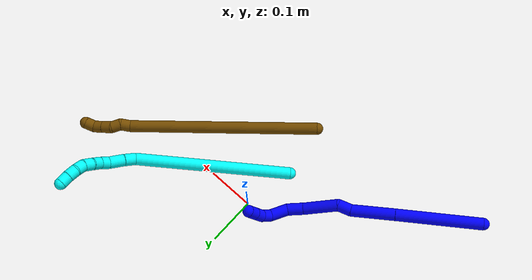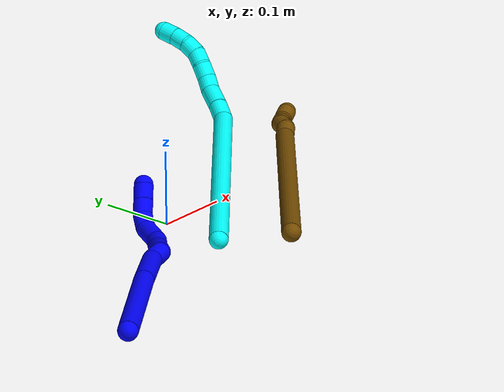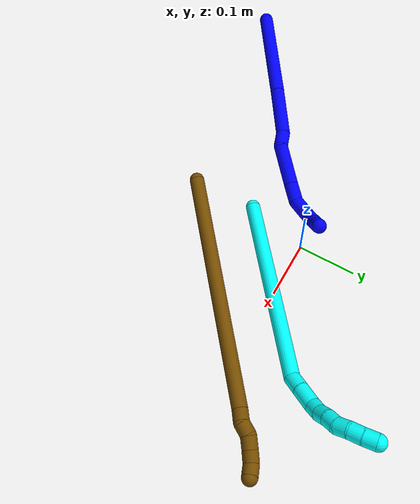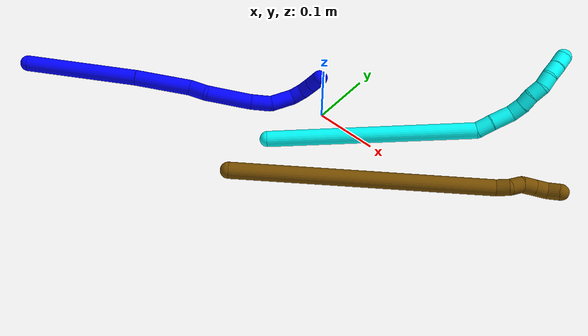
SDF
<sdf version="1.7">
 <world name="default">
  <model name="1">
   <static>0</static>
   <link name="1">
    <collision name="collision-cylinder-e_1_1_4">
     <pose>0.034532 0.018659 -0.078277 -2.90759 0.40536 -2.1025</pose>
     <geometry><cylinder><radius>0.0125</radius><length>0.175132</length></cylinder></geometry>
     <surface>
      <friction><ode><mu>1.16</mu><mu2>1.16</mu2><slip1>0</slip1><slip2>0</slip2></ode></friction>
      <contact><ode><kp>1e+06</kp><kd>1</kd><max_vel>0</max_vel><min_depth>0.001</min_depth></ode></contact>
     </surface>
    </collision>
    <visual name="visual-cylinder-e_1_1_4">
     <pose>0.034532 0.018659 -0.078277 -2.90759 0.40536 -2.1025</pose>
     <geometry><cylinder><radius>0.0125</radius><length>0.175132</length></cylinder></geometry>
     <material><ambient>0 0 1 1</ambient></material>
    </visual>
    <collision name="collision-cylinder-e_2_4_5">
     <pose>0.085967 0.044391 -0.197474 -2.97042 0.386568 -2.31536</pose>
     <geometry><cylinder><radius>0.0125</radius><length>0.089672</length></cylinder></geometry>
     <surface>
      <friction><ode><mu>1.16</mu><mu2>1.16</mu2><slip1>0</slip1><slip2>0</slip2></ode></friction>
      <contact><ode><kp>1e+06</kp><kd>1</kd><max_vel>0</max_vel><min_depth>0.001</min_depth></ode></contact>
     </surface>
    </collision>
    <visual name="visual-cylinder-e_2_4_5">
     <pose>0.085967 0.044391 -0.197474 -2.97042 0.386568 -2.31536</pose>
     <geometry><cylinder><radius>0.0125</radius><length>0.089672</length></cylinder></geometry>
     <material><ambient>0 0 1 1</ambient></material>
    </visual>
    <collision name="collision-cylinder-e_3_5_6">
     <pose>0.111627 0.052879 -0.24908 -3.01004 0.682228 -2.77465</pose>
     <geometry><cylinder><radius>0.0125</radius><length>0.027775</length></cylinder></geometry>
     <surface>
      <friction><ode><mu>1.16</mu><mu2>1.16</mu2><slip1>0</slip1><slip2>0</slip2></ode></friction>
      <contact><ode><kp>1e+06</kp><kd>1</kd><max_vel>0</max_vel><min_depth>0.001</min_depth></ode></contact>
     </surface>
    </collision>
    <visual name="visual-cylinder-e_3_5_6">
     <pose>0.111627 0.052879 -0.24908 -3.01004 0.682228 -2.77465</pose>
     <geometry><cylinder><radius>0.0125</radius><length>0.027775</length></cylinder></geometry>
     <material><ambient>0 0 1 1</ambient></material>
    </visual>
    <collision name="collision-cylinder-e_4_6_7">
     <pose>0.126321 0.056686 -0.295964 -3.07558 0.162249 -2.37</pose>
     <geometry><cylinder><radius>0.0125</radius><length>0.073519</length></cylinder></geometry>
     <surface>
      <friction><ode><mu>1.16</mu><mu2>1.16</mu2><slip1>0</slip1><slip2>0</slip2></ode></friction>
      <contact><ode><kp>1e+06</kp><kd>1</kd><max_vel>0</max_vel><min_depth>0.001</min_depth></ode></contact>
     </surface>
    </collision>
    <visual name="visual-cylinder-e_4_6_7">
     <pose>0.126321 0.056686 -0.295964 -3.07558 0.162249 -2.37</pose>
     <geometry><cylinder><radius>0.0125</radius><length>0.073519</length></cylinder></geometry>
     <material><ambient>0 0 1 1</ambient></material>
    </visual>
    <collision name="collision-cylinder-e_5_7_8">
     <pose>0.136342 0.062486 -0.348403 -2.93482 0.241232 -1.72561</pose>
     <geometry><cylinder><radius>0.0125</radius><length>0.03418</length></cylinder></geometry>
     <surface>
      <friction><ode><mu>1.16</mu><mu2>1.16</mu2><slip1>0</slip1><slip2>0</slip2></ode></friction>
      <contact><ode><kp>1e+06</kp><kd>1</kd><max_vel>0</max_vel><min_depth>0.001</min_depth></ode></contact>
     </surface>
    </collision>
    <visual name="visual-cylinder-e_5_7_8">
     <pose>0.136342 0.062486 -0.348403 -2.93482 0.241232 -1.72561</pose>
     <geometry><cylinder><radius>0.0125</radius><length>0.03418</length></cylinder></geometry>
     <material><ambient>0 0 1 1</ambient></material>
    </visual>
    <collision name="collision-cylinder-e_6_8_9">
     <pose>0.140555 0.0756 -0.381037 -2.60695 0.006804 -0.024842</pose>
     <geometry><cylinder><radius>0.0125</radius><length>0.038103</length></cylinder></geometry>
     <surface>
      <friction><ode><mu>1.16</mu><mu2>1.16</mu2><slip1>0</slip1><slip2>0</slip2></ode></friction>
      <contact><ode><kp>1e+06</kp><kd>1</kd><max_vel>0</max_vel><min_depth>0.001</min_depth></ode></contact>
     </surface>
    </collision>
    <visual name="visual-cylinder-e_6_8_9">
     <pose>0.140555 0.0756 -0.381037 -2.60695 0.006804 -0.024842</pose>
     <geometry><cylinder><radius>0.0125</radius><length>0.038103</length></cylinder></geometry>
     <material><ambient>0 0 1 1</ambient></material>
    </visual>
    <collision name="collision-cylinder-e_7_9_10">
     <pose>0.14386 0.093391 -0.403075 -2.18049 0.311564 -0.585239</pose>
     <geometry><cylinder><radius>0.0125</radius><length>0.020716</length></cylinder></geometry>
     <surface>
      <friction><ode><mu>1.16</mu><mu2>1.16</mu2><slip1>0</slip1><slip2>0</slip2></ode></friction>
      <contact><ode><kp>1e+06</kp><kd>1</kd><max_vel>0</max_vel><min_depth>0.001</min_depth></ode></contact>
     </surface>
    </collision>
    <visual name="visual-cylinder-e_7_9_10">
     <pose>0.14386 0.093391 -0.403075 -2.18049 0.311564 -0.585239</pose>
     <geometry><cylinder><radius>0.0125</radius><length>0.020716</length></cylinder></geometry>
     <material><ambient>0 0 1 1</ambient></material>
    </visual>
    <collision name="collision-cylinder-e_8_10_11">
     <pose>0.152276 0.109779 -0.411205 -1.86146 0.543774 -0.71648</pose>
     <geometry><cylinder><radius>0.0125</radius><length>0.020261</length></cylinder></geometry>
     <surface>
      <friction><ode><mu>1.16</mu><mu2>1.16</mu2><slip1>0</slip1><slip2>0</slip2></ode></friction>
      <contact><ode><kp>1e+06</kp><kd>1</kd><max_vel>0</max_vel><min_depth>0.001</min_depth></ode></contact>
     </surface>
    </collision>
    <visual name="visual-cylinder-e_8_10_11">
     <pose>0.152276 0.109779 -0.411205 -1.86146 0.543774 -0.71648</pose>
     <geometry><cylinder><radius>0.0125</radius><length>0.020261</length></cylinder></geometry>
     <material><ambient>0 0 1 1</ambient></material>
    </visual>
    <collision name="collision-cylinder-e_9_11_2">
     <pose>0.162812 0.126681 -0.415835 -1.8153 0.538717 -0.679416</pose>
     <geometry><cylinder><radius>0.0125</radius><length>0.020642</length></cylinder></geometry>
     <surface>
      <friction><ode><mu>1.16</mu><mu2>1.16</mu2><slip1>0</slip1><slip2>0</slip2></ode></friction>
      <contact><ode><kp>1e+06</kp><kd>1</kd><max_vel>0</max_vel><min_depth>0.001</min_depth></ode></contact>
     </surface>
    </collision>
    <visual name="visual-cylinder-e_9_11_2">
     <pose>0.162812 0.126681 -0.415835 -1.8153 0.538717 -0.679416</pose>
     <geometry><cylinder><radius>0.0125</radius><length>0.020642</length></cylinder></geometry>
     <material><ambient>0 0 1 1</ambient></material>
    </visual>
    <collision name="collision-sphere-2">
     <pose>0.168107 0.135276 -0.417979 0 -0 0</pose>
     <geometry><sphere><radius>0.0125</radius></sphere></geometry>
     <surface>
      <friction><ode><mu>1.16</mu><mu2>1.16</mu2><slip1>0</slip1><slip2>0</slip2></ode></friction>
      <contact><ode><kp>1e+06</kp><kd>1</kd><max_vel>0</max_vel><min_depth>0.001</min_depth></ode></contact>
     </surface>
    </collision>
    <visual name="visual-sphere-2">
     <pose>0.168107 0.135276 -0.417979 0 -0 0</pose>
     <geometry><sphere><radius>0.0125</radius></sphere></geometry>
     <material><ambient>0 0 1 1</ambient></material>
    </visual>
    <collision name="collision-sphere-11">
     <pose>0.157517 0.118085 -0.41369 0 -0 0</pose>
     <geometry><sphere><radius>0.0125</radius></sphere></geometry>
     <surface>
      <friction><ode><mu>1.16</mu><mu2>1.16</mu2><slip1>0</slip1><slip2>0</slip2></ode></friction>
      <contact><ode><kp>1e+06</kp><kd>1</kd><max_vel>0</max_vel><min_depth>0.001</min_depth></ode></contact>
     </surface>
    </collision>
    <visual name="visual-sphere-11">
     <pose>0.157517 0.118085 -0.41369 0 -0 0</pose>
     <geometry><sphere><radius>0.0125</radius></sphere></geometry>
     <material><ambient>0 0 1 1</ambient></material>
    </visual>
    <collision name="collision-sphere-10">
     <pose>0.147035 0.101474 -0.408721 0 -0 0</pose>
     <geometry><sphere><radius>0.0125</radius></sphere></geometry>
     <surface>
      <friction><ode><mu>1.16</mu><mu2>1.16</mu2><slip1>0</slip1><slip2>0</slip2></ode></friction>
      <contact><ode><kp>1e+06</kp><kd>1</kd><max_vel>0</max_vel><min_depth>0.001</min_depth></ode></contact>
     </surface>
    </collision>
    <visual name="visual-sphere-10">
     <pose>0.147035 0.101474 -0.408721 0 -0 0</pose>
     <geometry><sphere><radius>0.0125</radius></sphere></geometry>
     <material><ambient>0 0 1 1</ambient></material>
    </visual>
    <collision name="collision-sphere-9">
     <pose>0.140684 0.085308 -0.397429 0 -0 0</pose>
     <geometry><sphere><radius>0.0125</radius></sphere></geometry>
     <surface>
      <friction><ode><mu>1.16</mu><mu2>1.16</mu2><slip1>0</slip1><slip2>0</slip2></ode></friction>
      <contact><ode><kp>1e+06</kp><kd>1</kd><max_vel>0</max_vel><min_depth>0.001</min_depth></ode></contact>
     </surface>
    </collision>
    <visual name="visual-sphere-9">
     <pose>0.140684 0.085308 -0.397429 0 -0 0</pose>
     <geometry><sphere><radius>0.0125</radius></sphere></geometry>
     <material><ambient>0 0 1 1</ambient></material>
    </visual>
    <collision name="collision-sphere-4">
     <pose>0.069063 0.037318 -0.156554 0 -0 0</pose>
     <geometry><sphere><radius>0.0125</radius></sphere></geometry>
     <surface>
      <friction><ode><mu>1.16</mu><mu2>1.16</mu2><slip1>0</slip1><slip2>0</slip2></ode></friction>
      <contact><ode><kp>1e+06</kp><kd>1</kd><max_vel>0</max_vel><min_depth>0.001</min_depth></ode></contact>
     </surface>
    </collision>
    <visual name="visual-sphere-4">
     <pose>0.069063 0.037318 -0.156554 0 -0 0</pose>
     <geometry><sphere><radius>0.0125</radius></sphere></geometry>
     <material><ambient>0 0 1 1</ambient></material>
    </visual>
    <collision name="collision-sphere-1">
     <geometry><sphere><radius>0.0125</radius></sphere></geometry>
     <surface>
      <friction><ode><mu>1.16</mu><mu2>1.16</mu2><slip1>0</slip1><slip2>0</slip2></ode></friction>
      <contact><ode><kp>1e+06</kp><kd>1</kd><max_vel>0</max_vel><min_depth>0.001</min_depth></ode></contact>
     </surface>
    </collision>
    <visual name="visual-sphere-1">
     <geometry><sphere><radius>0.0125</radius></sphere></geometry>
     <material><ambient>0 0 1 1</ambient></material>
    </visual>
    <collision name="collision-sphere-8">
     <pose>0.140425 0.065893 -0.364644 0 -0 0</pose>
     <geometry><sphere><radius>0.0125</radius></sphere></geometry>
     <surface>
      <friction><ode><mu>1.16</mu><mu2>1.16</mu2><slip1>0</slip1><slip2>0</slip2></ode></friction>
      <contact><ode><kp>1e+06</kp><kd>1</kd><max_vel>0</max_vel><min_depth>0.001</min_depth></ode></contact>
     </surface>
    </collision>
    <visual name="visual-sphere-8">
     <pose>0.140425 0.065893 -0.364644 0 -0 0</pose>
     <geometry><sphere><radius>0.0125</radius></sphere></geometry>
     <material><ambient>0 0 1 1</ambient></material>
    </visual>
    <collision name="collision-sphere-5">
     <pose>0.102871 0.051465 -0.238394 0 -0 0</pose>
     <geometry><sphere><radius>0.0125</radius></sphere></geometry>
     <surface>
      <friction><ode><mu>1.16</mu><mu2>1.16</mu2><slip1>0</slip1><slip2>0</slip2></ode></friction>
      <contact><ode><kp>1e+06</kp><kd>1</kd><max_vel>0</max_vel><min_depth>0.001</min_depth></ode></contact>
     </surface>
    </collision>
    <visual name="visual-sphere-5">
     <pose>0.102871 0.051465 -0.238394 0 -0 0</pose>
     <geometry><sphere><radius>0.0125</radius></sphere></geometry>
     <material><ambient>0 0 1 1</ambient></material>
    </visual>
    <collision name="collision-sphere-6">
     <pose>0.120383 0.054293 -0.259766 0 -0 0</pose>
     <geometry><sphere><radius>0.0125</radius></sphere></geometry>
     <surface>
      <friction><ode><mu>1.16</mu><mu2>1.16</mu2><slip1>0</slip1><slip2>0</slip2></ode></friction>
      <contact><ode><kp>1e+06</kp><kd>1</kd><max_vel>0</max_vel><min_depth>0.001</min_depth></ode></contact>
     </surface>
    </collision>
    <visual name="visual-sphere-6">
     <pose>0.120383 0.054293 -0.259766 0 -0 0</pose>
     <geometry><sphere><radius>0.0125</radius></sphere></geometry>
     <material><ambient>0 0 1 1</ambient></material>
    </visual>
    <collision name="collision-sphere-7">
     <pose>0.132259 0.059079 -0.332161 0 -0 0</pose>
     <geometry><sphere><radius>0.0125</radius></sphere></geometry>
     <surface>
      <friction><ode><mu>1.16</mu><mu2>1.16</mu2><slip1>0</slip1><slip2>0</slip2></ode></friction>
      <contact><ode><kp>1e+06</kp><kd>1</kd><max_vel>0</max_vel><min_depth>0.001</min_depth></ode></contact>
     </surface>
    </collision>
    <visual name="visual-sphere-7">
     <pose>0.132259 0.059079 -0.332161 0 -0 0</pose>
     <geometry><sphere><radius>0.0125</radius></sphere></geometry>
     <material><ambient>0 0 1 1</ambient></material>
    </visual>
    <inertial>
     <pose>0.091172 0.04935 -0.223572 0 -0 0</pose>
     <mass>0.5</mass>
     <inertia>
      <ixx>-0.000693</ixx>
      <ixy>0</ixy>
      <ixz>0</ixz>
      <iyy>-9.6e-05</iyy>
      <iyz>0</iyz>
      <izz>-0.000364</izz>
     </inertia>
    </inertial>
   </link>
   <pose>-0.388502 -0.276774 0.06834 1.08687 -0.358019 -0.490263</pose>
  </model>
  <model name="3">
   <static>0</static>
   <link name="3">
    <collision name="collision-cylinder-e_1_1_4">
     <pose>0.042819 0.017801 0.154561 -0.114666 0.268569 -0.015508</pose>
     <geometry><cylinder><radius>0.0125</radius><length>0.322735</length></cylinder></geometry>
     <surface>
      <friction><ode><mu>1.16</mu><mu2>1.16</mu2><slip1>0</slip1><slip2>0</slip2></ode></friction>
      <contact><ode><kp>1e+06</kp><kd>1</kd><max_vel>0</max_vel><min_depth>0.001</min_depth></ode></contact>
     </surface>
    </collision>
    <visual name="visual-cylinder-e_1_1_4">
     <pose>0.042819 0.017801 0.154561 -0.114666 0.268569 -0.015508</pose>
     <geometry><cylinder><radius>0.0125</radius><length>0.322735</length></cylinder></geometry>
     <material><ambient>0.003922 1 0.996078 1</ambient></material>
    </visual>
    <collision name="collision-cylinder-e_2_4_5">
     <pose>0.093722 0.03553 0.318555 0.007679 0.708533 0.00284</pose>
     <geometry><cylinder><radius>0.0125</radius><length>0.024847</length></cylinder></geometry>
     <surface>
      <friction><ode><mu>1.16</mu><mu2>1.16</mu2><slip1>0</slip1><slip2>0</slip2></ode></friction>
      <contact><ode><kp>1e+06</kp><kd>1</kd><max_vel>0</max_vel><min_depth>0.001</min_depth></ode></contact>
     </surface>
    </collision>
    <visual name="visual-cylinder-e_2_4_5">
     <pose>0.093722 0.03553 0.318555 0.007679 0.708533 0.00284</pose>
     <geometry><cylinder><radius>0.0125</radius><length>0.024847</length></cylinder></geometry>
     <material><ambient>0.003922 1 0.996078 1</ambient></material>
    </visual>
    <collision name="collision-cylinder-e_3_5_6">
     <pose>0.111303 0.03403 0.340943 0.109689 0.629655 0.035753</pose>
     <geometry><cylinder><radius>0.0125</radius><length>0.032253</length></cylinder></geometry>
     <surface>
      <friction><ode><mu>1.16</mu><mu2>1.16</mu2><slip1>0</slip1><slip2>0</slip2></ode></friction>
      <contact><ode><kp>1e+06</kp><kd>1</kd><max_vel>0</max_vel><min_depth>0.001</min_depth></ode></contact>
     </surface>
    </collision>
    <visual name="visual-cylinder-e_3_5_6">
     <pose>0.111303 0.03403 0.340943 0.109689 0.629655 0.035753</pose>
     <geometry><cylinder><radius>0.0125</radius><length>0.032253</length></cylinder></geometry>
     <material><ambient>0.003922 1 0.996078 1</ambient></material>
    </visual>
    <collision name="collision-cylinder-e_4_6_7">
     <pose>0.128672 0.033654 0.359982 -0.170922 0.905812 -0.083333</pose>
     <geometry><cylinder><radius>0.0125</radius><length>0.020009</length></cylinder></geometry>
     <surface>
      <friction><ode><mu>1.16</mu><mu2>1.16</mu2><slip1>0</slip1><slip2>0</slip2></ode></friction>
      <contact><ode><kp>1e+06</kp><kd>1</kd><max_vel>0</max_vel><min_depth>0.001</min_depth></ode></contact>
     </surface>
    </collision>
    <visual name="visual-cylinder-e_4_6_7">
     <pose>0.128672 0.033654 0.359982 -0.170922 0.905812 -0.083333</pose>
     <geometry><cylinder><radius>0.0125</radius><length>0.020009</length></cylinder></geometry>
     <material><ambient>0.003922 1 0.996078 1</ambient></material>
    </visual>
    <collision name="collision-cylinder-e_5_7_8">
     <pose>0.145648 0.035314 0.370292 -0.143463 1.13213 -0.091254</pose>
     <geometry><cylinder><radius>0.0125</radius><length>0.020112</length></cylinder></geometry>
     <surface>
      <friction><ode><mu>1.16</mu><mu2>1.16</mu2><slip1>0</slip1><slip2>0</slip2></ode></friction>
      <contact><ode><kp>1e+06</kp><kd>1</kd><max_vel>0</max_vel><min_depth>0.001</min_depth></ode></contact>
     </surface>
    </collision>
    <visual name="visual-cylinder-e_5_7_8">
     <pose>0.145648 0.035314 0.370292 -0.143463 1.13213 -0.091254</pose>
     <geometry><cylinder><radius>0.0125</radius><length>0.020112</length></cylinder></geometry>
     <material><ambient>0.003922 1 0.996078 1</ambient></material>
    </visual>
    <collision name="collision-cylinder-e_6_8_9">
     <pose>0.162804 0.035841 0.380487 0.014005 0.932909 0.007052</pose>
     <geometry><cylinder><radius>0.0125</radius><length>0.020044</length></cylinder></geometry>
     <surface>
      <friction><ode><mu>1.16</mu><mu2>1.16</mu2><slip1>0</slip1><slip2>0</slip2></ode></friction>
      <contact><ode><kp>1e+06</kp><kd>1</kd><max_vel>0</max_vel><min_depth>0.001</min_depth></ode></contact>
     </surface>
    </collision>
    <visual name="visual-cylinder-e_6_8_9">
     <pose>0.162804 0.035841 0.380487 0.014005 0.932909 0.007052</pose>
     <geometry><cylinder><radius>0.0125</radius><length>0.020044</length></cylinder></geometry>
     <material><ambient>0.003922 1 0.996078 1</ambient></material>
    </visual>
    <collision name="collision-cylinder-e_7_9_10">
     <pose>0.179371 0.03253 0.390585 0.663403 1.01903 0.38023</pose>
     <geometry><cylinder><radius>0.0125</radius><length>0.020001</length></cylinder></geometry>
     <surface>
      <friction><ode><mu>1.16</mu><mu2>1.16</mu2><slip1>0</slip1><slip2>0</slip2></ode></friction>
      <contact><ode><kp>1e+06</kp><kd>1</kd><max_vel>0</max_vel><min_depth>0.001</min_depth></ode></contact>
     </surface>
    </collision>
    <visual name="visual-cylinder-e_7_9_10">
     <pose>0.179371 0.03253 0.390585 0.663403 1.01903 0.38023</pose>
     <geometry><cylinder><radius>0.0125</radius><length>0.020001</length></cylinder></geometry>
     <material><ambient>0.003922 1 0.996078 1</ambient></material>
    </visual>
    <collision name="collision-cylinder-e_8_10_11">
     <pose>0.194817 0.024317 0.399924 0.763436 0.765593 0.320488</pose>
     <geometry><cylinder><radius>0.0125</radius><length>0.02</length></cylinder></geometry>
     <surface>
      <friction><ode><mu>1.16</mu><mu2>1.16</mu2><slip1>0</slip1><slip2>0</slip2></ode></friction>
      <contact><ode><kp>1e+06</kp><kd>1</kd><max_vel>0</max_vel><min_depth>0.001</min_depth></ode></contact>
     </surface>
    </collision>
    <visual name="visual-cylinder-e_8_10_11">
     <pose>0.194817 0.024317 0.399924 0.763436 0.765593 0.320488</pose>
     <geometry><cylinder><radius>0.0125</radius><length>0.02</length></cylinder></geometry>
     <material><ambient>0.003922 1 0.996078 1</ambient></material>
    </visual>
    <collision name="collision-cylinder-e_9_11_2">
     <pose>0.208248 0.013459 0.409954 0.883448 0.707675 0.345865</pose>
     <geometry><cylinder><radius>0.0125</radius><length>0.02</length></cylinder></geometry>
     <surface>
      <friction><ode><mu>1.16</mu><mu2>1.16</mu2><slip1>0</slip1><slip2>0</slip2></ode></friction>
      <contact><ode><kp>1e+06</kp><kd>1</kd><max_vel>0</max_vel><min_depth>0.001</min_depth></ode></contact>
     </surface>
    </collision>
    <visual name="visual-cylinder-e_9_11_2">
     <pose>0.208248 0.013459 0.409954 0.883448 0.707675 0.345865</pose>
     <geometry><cylinder><radius>0.0125</radius><length>0.02</length></cylinder></geometry>
     <material><ambient>0.003922 1 0.996078 1</ambient></material>
    </visual>
    <collision name="collision-sphere-2">
     <pose>0.214748 0.007585 0.414775 0 -0 0</pose>
     <geometry><sphere><radius>0.0125</radius></sphere></geometry>
     <surface>
      <friction><ode><mu>1.16</mu><mu2>1.16</mu2><slip1>0</slip1><slip2>0</slip2></ode></friction>
      <contact><ode><kp>1e+06</kp><kd>1</kd><max_vel>0</max_vel><min_depth>0.001</min_depth></ode></contact>
     </surface>
    </collision>
    <visual name="visual-sphere-2">
     <pose>0.214748 0.007585 0.414775 0 -0 0</pose>
     <geometry><sphere><radius>0.0125</radius></sphere></geometry>
     <material><ambient>0.003922 1 0.996078 1</ambient></material>
    </visual>
    <collision name="collision-sphere-11">
     <pose>0.201747 0.019332 0.405133 0 -0 0</pose>
     <geometry><sphere><radius>0.0125</radius></sphere></geometry>
     <surface>
      <friction><ode><mu>1.16</mu><mu2>1.16</mu2><slip1>0</slip1><slip2>0</slip2></ode></friction>
      <contact><ode><kp>1e+06</kp><kd>1</kd><max_vel>0</max_vel><min_depth>0.001</min_depth></ode></contact>
     </surface>
    </collision>
    <visual name="visual-sphere-11">
     <pose>0.201747 0.019332 0.405133 0 -0 0</pose>
     <geometry><sphere><radius>0.0125</radius></sphere></geometry>
     <material><ambient>0.003922 1 0.996078 1</ambient></material>
    </visual>
    <collision name="collision-sphere-10">
     <pose>0.187888 0.029302 0.394715 0 -0 0</pose>
     <geometry><sphere><radius>0.0125</radius></sphere></geometry>
     <surface>
      <friction><ode><mu>1.16</mu><mu2>1.16</mu2><slip1>0</slip1><slip2>0</slip2></ode></friction>
      <contact><ode><kp>1e+06</kp><kd>1</kd><max_vel>0</max_vel><min_depth>0.001</min_depth></ode></contact>
     </surface>
    </collision>
    <visual name="visual-sphere-10">
     <pose>0.187888 0.029302 0.394715 0 -0 0</pose>
     <geometry><sphere><radius>0.0125</radius></sphere></geometry>
     <material><ambient>0.003922 1 0.996078 1</ambient></material>
    </visual>
    <collision name="collision-sphere-9">
     <pose>0.170855 0.035758 0.386455 0 -0 0</pose>
     <geometry><sphere><radius>0.0125</radius></sphere></geometry>
     <surface>
      <friction><ode><mu>1.16</mu><mu2>1.16</mu2><slip1>0</slip1><slip2>0</slip2></ode></friction>
      <contact><ode><kp>1e+06</kp><kd>1</kd><max_vel>0</max_vel><min_depth>0.001</min_depth></ode></contact>
     </surface>
    </collision>
    <visual name="visual-sphere-9">
     <pose>0.170855 0.035758 0.386455 0 -0 0</pose>
     <geometry><sphere><radius>0.0125</radius></sphere></geometry>
     <material><ambient>0.003922 1 0.996078 1</ambient></material>
    </visual>
    <collision name="collision-sphere-4">
     <pose>0.085638 0.035602 0.309122 0 -0 0</pose>
     <geometry><sphere><radius>0.0125</radius></sphere></geometry>
     <surface>
      <friction><ode><mu>1.16</mu><mu2>1.16</mu2><slip1>0</slip1><slip2>0</slip2></ode></friction>
      <contact><ode><kp>1e+06</kp><kd>1</kd><max_vel>0</max_vel><min_depth>0.001</min_depth></ode></contact>
     </surface>
    </collision>
    <visual name="visual-sphere-4">
     <pose>0.085638 0.035602 0.309122 0 -0 0</pose>
     <geometry><sphere><radius>0.0125</radius></sphere></geometry>
     <material><ambient>0.003922 1 0.996078 1</ambient></material>
    </visual>
    <collision name="collision-sphere-1">
     <geometry><sphere><radius>0.0125</radius></sphere></geometry>
     <surface>
      <friction><ode><mu>1.16</mu><mu2>1.16</mu2><slip1>0</slip1><slip2>0</slip2></ode></friction>
      <contact><ode><kp>1e+06</kp><kd>1</kd><max_vel>0</max_vel><min_depth>0.001</min_depth></ode></contact>
     </surface>
    </collision>
    <visual name="visual-sphere-1">
     <geometry><sphere><radius>0.0125</radius></sphere></geometry>
     <material><ambient>0.003922 1 0.996078 1</ambient></material>
    </visual>
    <collision name="collision-sphere-8">
     <pose>0.154753 0.035925 0.37452 0 -0 0</pose>
     <geometry><sphere><radius>0.0125</radius></sphere></geometry>
     <surface>
      <friction><ode><mu>1.16</mu><mu2>1.16</mu2><slip1>0</slip1><slip2>0</slip2></ode></friction>
      <contact><ode><kp>1e+06</kp><kd>1</kd><max_vel>0</max_vel><min_depth>0.001</min_depth></ode></contact>
     </surface>
    </collision>
    <visual name="visual-sphere-8">
     <pose>0.154753 0.035925 0.37452 0 -0 0</pose>
     <geometry><sphere><radius>0.0125</radius></sphere></geometry>
     <material><ambient>0.003922 1 0.996078 1</ambient></material>
    </visual>
    <collision name="collision-sphere-5">
     <pose>0.101806 0.035457 0.327987 0 -0 0</pose>
     <geometry><sphere><radius>0.0125</radius></sphere></geometry>
     <surface>
      <friction><ode><mu>1.16</mu><mu2>1.16</mu2><slip1>0</slip1><slip2>0</slip2></ode></friction>
      <contact><ode><kp>1e+06</kp><kd>1</kd><max_vel>0</max_vel><min_depth>0.001</min_depth></ode></contact>
     </surface>
    </collision>
    <visual name="visual-sphere-5">
     <pose>0.101806 0.035457 0.327987 0 -0 0</pose>
     <geometry><sphere><radius>0.0125</radius></sphere></geometry>
     <material><ambient>0.003922 1 0.996078 1</ambient></material>
    </visual>
    <collision name="collision-sphere-6">
     <pose>0.120799 0.032604 0.353899 0 -0 0</pose>
     <geometry><sphere><radius>0.0125</radius></sphere></geometry>
     <surface>
      <friction><ode><mu>1.16</mu><mu2>1.16</mu2><slip1>0</slip1><slip2>0</slip2></ode></friction>
      <contact><ode><kp>1e+06</kp><kd>1</kd><max_vel>0</max_vel><min_depth>0.001</min_depth></ode></contact>
     </surface>
    </collision>
    <visual name="visual-sphere-6">
     <pose>0.120799 0.032604 0.353899 0 -0 0</pose>
     <geometry><sphere><radius>0.0125</radius></sphere></geometry>
     <material><ambient>0.003922 1 0.996078 1</ambient></material>
    </visual>
    <collision name="collision-sphere-7">
     <pose>0.136544 0.034704 0.366065 0 -0 0</pose>
     <geometry><sphere><radius>0.0125</radius></sphere></geometry>
     <surface>
      <friction><ode><mu>1.16</mu><mu2>1.16</mu2><slip1>0</slip1><slip2>0</slip2></ode></friction>
      <contact><ode><kp>1e+06</kp><kd>1</kd><max_vel>0</max_vel><min_depth>0.001</min_depth></ode></contact>
     </surface>
    </collision>
    <visual name="visual-sphere-7">
     <pose>0.136544 0.034704 0.366065 0 -0 0</pose>
     <geometry><sphere><radius>0.0125</radius></sphere></geometry>
     <material><ambient>0.003922 1 0.996078 1</ambient></material>
    </visual>
    <inertial>
     <pose>0.080307 0.022467 0.23016 0 -0 0</pose>
     <mass>0.5</mass>
     <inertia>
      <ixx>0.002698</ixx>
      <ixy>0</ixy>
      <ixz>0</ixz>
      <iyy>0.00277</iyy>
      <iyz>0</iyz>
      <izz>-0.001033</izz>
     </inertia>
    </inertial>
   </link>
   <pose>-0.023027 -0.106061 0.015252 1.91957 -1.04546 1.91406</pose>
  </model>
  <model name="12">
   <static>0</static>
   <link name="12">
    <collision name="collision-cylinder-e_1_1_4">
     <pose>0.114605 0.087296 -0.137758 -2.57677 0.612548 -1.65668</pose>
     <geometry><cylinder><radius>0.0125</radius><length>0.398658</length></cylinder></geometry>
     <surface>
      <friction><ode><mu>1.16</mu><mu2>1.16</mu2><slip1>0</slip1><slip2>0</slip2></ode></friction>
      <contact><ode><kp>1e+06</kp><kd>1</kd><max_vel>0</max_vel><min_depth>0.001</min_depth></ode></contact>
     </surface>
    </collision>
    <visual name="visual-cylinder-e_1_1_4">
     <pose>0.114605 0.087296 -0.137758 -2.57677 0.612548 -1.65668</pose>
     <geometry><cylinder><radius>0.0125</radius><length>0.398658</length></cylinder></geometry>
     <material><ambient>0.466667 0.301961 0 1</ambient></material>
    </visual>
    <collision name="collision-cylinder-e_2_4_5">
     <pose>0.236074 0.180757 -0.280494 -2.25014 0.713779 -1.32531</pose>
     <geometry><cylinder><radius>0.0125</radius><length>0.020967</length></cylinder></geometry>
     <surface>
      <friction><ode><mu>1.16</mu><mu2>1.16</mu2><slip1>0</slip1><slip2>0</slip2></ode></friction>
      <contact><ode><kp>1e+06</kp><kd>1</kd><max_vel>0</max_vel><min_depth>0.001</min_depth></ode></contact>
     </surface>
    </collision>
    <visual name="visual-cylinder-e_2_4_5">
     <pose>0.236074 0.180757 -0.280494 -2.25014 0.713779 -1.32531</pose>
     <geometry><cylinder><radius>0.0125</radius><length>0.020967</length></cylinder></geometry>
     <material><ambient>0.466667 0.301961 0 1</ambient></material>
    </visual>
    <collision name="collision-cylinder-e_3_5_6">
     <pose>0.245712 0.192633 -0.293235 -2.50725 0.280392 -0.812065</pose>
     <geometry><cylinder><radius>0.0125</radius><length>0.020056</length></cylinder></geometry>
     <surface>
      <friction><ode><mu>1.16</mu><mu2>1.16</mu2><slip1>0</slip1><slip2>0</slip2></ode></friction>
      <contact><ode><kp>1e+06</kp><kd>1</kd><max_vel>0</max_vel><min_depth>0.001</min_depth></ode></contact>
     </surface>
    </collision>
    <visual name="visual-cylinder-e_3_5_6">
     <pose>0.245712 0.192633 -0.293235 -2.50725 0.280392 -0.812065</pose>
     <geometry><cylinder><radius>0.0125</radius><length>0.020056</length></cylinder></geometry>
     <material><ambient>0.466667 0.301961 0 1</ambient></material>
    </visual>
    <collision name="collision-cylinder-e_4_6_7">
     <pose>0.254493 0.201032 -0.308628 -2.80289 0.638507 -2.18685</pose>
     <geometry><cylinder><radius>0.0125</radius><length>0.020153</length></cylinder></geometry>
     <surface>
      <friction><ode><mu>1.16</mu><mu2>1.16</mu2><slip1>0</slip1><slip2>0</slip2></ode></friction>
      <contact><ode><kp>1e+06</kp><kd>1</kd><max_vel>0</max_vel><min_depth>0.001</min_depth></ode></contact>
     </surface>
    </collision>
    <visual name="visual-cylinder-e_4_6_7">
     <pose>0.254493 0.201032 -0.308628 -2.80289 0.638507 -2.18685</pose>
     <geometry><cylinder><radius>0.0125</radius><length>0.020153</length></cylinder></geometry>
     <material><ambient>0.466667 0.301961 0 1</ambient></material>
    </visual>
    <collision name="collision-cylinder-e_5_7_8">
     <pose>0.266734 0.206433 -0.323614 -2.78829 0.672055 -2.19662</pose>
     <geometry><cylinder><radius>0.0125</radius><length>0.020032</length></cylinder></geometry>
     <surface>
      <friction><ode><mu>1.16</mu><mu2>1.16</mu2><slip1>0</slip1><slip2>0</slip2></ode></friction>
      <contact><ode><kp>1e+06</kp><kd>1</kd><max_vel>0</max_vel><min_depth>0.001</min_depth></ode></contact>
     </surface>
    </collision>
    <visual name="visual-cylinder-e_5_7_8">
     <pose>0.266734 0.206433 -0.323614 -2.78829 0.672055 -2.19662</pose>
     <geometry><cylinder><radius>0.0125</radius><length>0.020032</length></cylinder></geometry>
     <material><ambient>0.466667 0.301961 0 1</ambient></material>
    </visual>
    <collision name="collision-cylinder-e_6_8_2">
     <pose>0.281112 0.214073 -0.334248 -2.15803 0.942111 -1.5203</pose>
     <geometry><cylinder><radius>0.0125</radius><length>0.020134</length></cylinder></geometry>
     <surface>
      <friction><ode><mu>1.16</mu><mu2>1.16</mu2><slip1>0</slip1><slip2>0</slip2></ode></friction>
      <contact><ode><kp>1e+06</kp><kd>1</kd><max_vel>0</max_vel><min_depth>0.001</min_depth></ode></contact>
     </surface>
    </collision>
    <visual name="visual-cylinder-e_6_8_2">
     <pose>0.281112 0.214073 -0.334248 -2.15803 0.942111 -1.5203</pose>
     <geometry><cylinder><radius>0.0125</radius><length>0.020134</length></cylinder></geometry>
     <material><ambient>0.466667 0.301961 0 1</ambient></material>
    </visual>
    <collision name="collision-sphere-2">
     <pose>0.289255 0.219001 -0.337528 0 -0 0</pose>
     <geometry><sphere><radius>0.0125</radius></sphere></geometry>
     <surface>
      <friction><ode><mu>1.16</mu><mu2>1.16</mu2><slip1>0</slip1><slip2>0</slip2></ode></friction>
      <contact><ode><kp>1e+06</kp><kd>1</kd><max_vel>0</max_vel><min_depth>0.001</min_depth></ode></contact>
     </surface>
    </collision>
    <visual name="visual-sphere-2">
     <pose>0.289255 0.219001 -0.337528 0 -0 0</pose>
     <geometry><sphere><radius>0.0125</radius></sphere></geometry>
     <material><ambient>0.466667 0.301961 0 1</ambient></material>
    </visual>
    <collision name="collision-sphere-4">
     <pose>0.22921 0.174592 -0.275515 0 -0 0</pose>
     <geometry><sphere><radius>0.0125</radius></sphere></geometry>
     <surface>
      <friction><ode><mu>1.16</mu><mu2>1.16</mu2><slip1>0</slip1><slip2>0</slip2></ode></friction>
      <contact><ode><kp>1e+06</kp><kd>1</kd><max_vel>0</max_vel><min_depth>0.001</min_depth></ode></contact>
     </surface>
    </collision>
    <visual name="visual-sphere-4">
     <pose>0.22921 0.174592 -0.275515 0 -0 0</pose>
     <geometry><sphere><radius>0.0125</radius></sphere></geometry>
     <material><ambient>0.466667 0.301961 0 1</ambient></material>
    </visual>
    <collision name="collision-sphere-1">
     <geometry><sphere><radius>0.0125</radius></sphere></geometry>
     <surface>
      <friction><ode><mu>1.16</mu><mu2>1.16</mu2><slip1>0</slip1><slip2>0</slip2></ode></friction>
      <contact><ode><kp>1e+06</kp><kd>1</kd><max_vel>0</max_vel><min_depth>0.001</min_depth></ode></contact>
     </surface>
    </collision>
    <visual name="visual-sphere-1">
     <geometry><sphere><radius>0.0125</radius></sphere></geometry>
     <material><ambient>0.466667 0.301961 0 1</ambient></material>
    </visual>
    <collision name="collision-sphere-8">
     <pose>0.27297 0.209144 -0.330967 0 -0 0</pose>
     <geometry><sphere><radius>0.0125</radius></sphere></geometry>
     <surface>
      <friction><ode><mu>1.16</mu><mu2>1.16</mu2><slip1>0</slip1><slip2>0</slip2></ode></friction>
      <contact><ode><kp>1e+06</kp><kd>1</kd><max_vel>0</max_vel><min_depth>0.001</min_depth></ode></contact>
     </surface>
    </collision>
    <visual name="visual-sphere-8">
     <pose>0.27297 0.209144 -0.330967 0 -0 0</pose>
     <geometry><sphere><radius>0.0125</radius></sphere></geometry>
     <material><ambient>0.466667 0.301961 0 1</ambient></material>
    </visual>
    <collision name="collision-sphere-5">
     <pose>0.242937 0.186922 -0.285473 0 -0 0</pose>
     <geometry><sphere><radius>0.0125</radius></sphere></geometry>
     <surface>
      <friction><ode><mu>1.16</mu><mu2>1.16</mu2><slip1>0</slip1><slip2>0</slip2></ode></friction>
      <contact><ode><kp>1e+06</kp><kd>1</kd><max_vel>0</max_vel><min_depth>0.001</min_depth></ode></contact>
     </surface>
    </collision>
    <visual name="visual-sphere-5">
     <pose>0.242937 0.186922 -0.285473 0 -0 0</pose>
     <geometry><sphere><radius>0.0125</radius></sphere></geometry>
     <material><ambient>0.466667 0.301961 0 1</ambient></material>
    </visual>
    <collision name="collision-sphere-6">
     <pose>0.248487 0.198344 -0.300996 0 -0 0</pose>
     <geometry><sphere><radius>0.0125</radius></sphere></geometry>
     <surface>
      <friction><ode><mu>1.16</mu><mu2>1.16</mu2><slip1>0</slip1><slip2>0</slip2></ode></friction>
      <contact><ode><kp>1e+06</kp><kd>1</kd><max_vel>0</max_vel><min_depth>0.001</min_depth></ode></contact>
     </surface>
    </collision>
    <visual name="visual-sphere-6">
     <pose>0.248487 0.198344 -0.300996 0 -0 0</pose>
     <geometry><sphere><radius>0.0125</radius></sphere></geometry>
     <material><ambient>0.466667 0.301961 0 1</ambient></material>
    </visual>
    <collision name="collision-sphere-7">
     <pose>0.260498 0.203721 -0.31626 0 -0 0</pose>
     <geometry><sphere><radius>0.0125</radius></sphere></geometry>
     <surface>
      <friction><ode><mu>1.16</mu><mu2>1.16</mu2><slip1>0</slip1><slip2>0</slip2></ode></friction>
      <contact><ode><kp>1e+06</kp><kd>1</kd><max_vel>0</max_vel><min_depth>0.001</min_depth></ode></contact>
     </surface>
    </collision>
    <visual name="visual-sphere-7">
     <pose>0.260498 0.203721 -0.31626 0 -0 0</pose>
     <geometry><sphere><radius>0.0125</radius></sphere></geometry>
     <material><ambient>0.466667 0.301961 0 1</ambient></material>
    </visual>
    <inertial>
     <pose>0.143396 0.109903 -0.172225 0 -0 0</pose>
     <mass>0.5</mass>
     <inertia>
      <ixx>-0.004671</ixx>
      <ixy>0</ixy>
      <ixz>0</ixz>
      <iyy>-0.002294</iyy>
      <iyz>0</iyz>
      <izz>-0.005398</izz>
     </inertia>
    </inertial>
   </link>
   <pose>-0.005914 -0.209699 0.047527 0.838256 -0.110497 -0.241341</pose>
  </model>
 </world>
</sdf>
